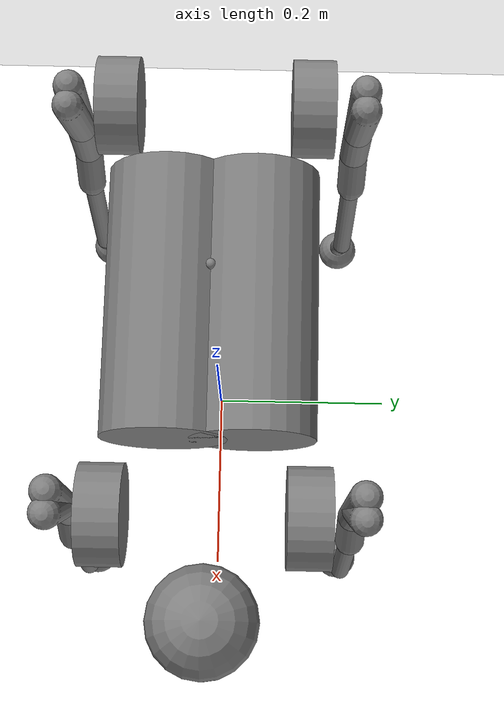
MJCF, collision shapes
<mujoco model="go2 scene">
  <include file="go2_mjx.xml"/>

  <statistic center="0 0 0.1" extent="0.8" meansize="0.04"/>

  <visual>
    <headlight diffuse=".8 .8 .8" ambient=".2 .2 .2" specular="1 1 1"/>
    <rgba force="1 0 0 1"/>
    <global azimuth="120" elevation="-20"/>
    <map force="0.01"/>
    <scale forcewidth="0.3" contactwidth="0.5" contactheight="0.2"/>
    <quality shadowsize="8192"/>
  </visual>

  <asset>
    <texture type="skybox" builtin="gradient" rgb1="1 1 1" rgb2="1 1 1" width="800" height="800"/>
    <texture type="2d" name="groundplane" builtin="checker" mark="edge" rgb1="1 1 1" rgb2="1 1 1" markrgb="0 0 0"
      width="300" height="300"/>
    <material name="groundplane" texture="groundplane" texuniform="true" texrepeat="5 5" reflectance="0"/>
  </asset>

  <worldbody>
    <geom name="floor" size="0 0 0.01" type="plane" material="groundplane" priority="1" friction="0.6" condim="3" contype="1" conaffinity="0"/>
  </worldbody>

  <keyframe>
    <key name="home" qpos="
    0 0 0.278
    1 0 0 0
    0.1 0.9 -1.8
    -0.1 0.9 -1.8
    0.1 0.9 -1.8
    -0.1 0.9 -1.8"
      ctrl="0.1 0.9 -1.8 -0.1 0.9 -1.8 0.1 0.9 -1.8 -0.1 0.9 -1.8"/>
    <key name="higher" qpos="0 0 0.31 1 0 0 0 0 0.82 -1.63 0 0.82 -1.63 0 0.82 -1.63 0 0.82 -1.63"
      ctrl="0 0.82 -1.63 0 0.82 -1.63 0 0.82 -1.63 0 0.82 -1.63"/>
    <key name="pre_recovery"
      qpos="-0.0318481 -0.000215369 0.0579031 1 -2.70738e-05 6.06169e-05 0.000231261 -0.352275 1.18554 -2.80738 0.360892 1.1806 -2.80281 -0.381197 1.16812 -2.79123 0.391054 1.1622 -2.78576"
      ctrl="-0.352275 1.18554 -2.80738 0.360892 1.1806 -2.80281 -0.381197 1.16812 -2.79123 0.391054 1.1622 -2.78576"/>
    <key name="footstand"
      qpos="0 0 0.54 0.8 0 -0.8 0 0 0.82 -1.6 0 0.82 -1.68 0 1.82 -1.16 0.0 1.82 -1.16"
      ctrl="0 0.82 -1.6 0 0.82 -1.68 0 1.82 -1.16 0.0 1.82 -1.16"/>
    <key name="handstand"
      qpos="0 0 0.54 0.8 0 0.8 0 0 -0.686 -1.16 0 -0.686 -1.16 0 1.7 -1.853 0 1.7 -1.853"
      ctrl="0 -0.686 -1.16 0 -0.686 -1.16 0 1.7 -1.853 0 1.7 -1.853"/>
  </keyframe>
</mujoco>

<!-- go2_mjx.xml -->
<mujoco model="go2">
  <compiler angle="radian" meshdir="assets" autolimits="true"/>

  <option iterations="1" ls_iterations="5" timestep="0.004" integrator="Euler">
    <flag eulerdamp="disable"/>
  </option>

  <default>
    <default class="go2">
      <geom friction="0.6" margin="0.001" condim="1"/>
      <joint axis="0 1 0" damping="2" armature="0.01"/>
      <general forcerange="-30 30" biastype="affine" gainprm="50 0 0" biasprm="0 -50 -0.5"/>

      <default class="abduction">
        <joint axis="1 0 0" range="-1.0472 1.0472"/>
        <general ctrlrange="-0.9472 0.9472"/>
      </default>
      <default class="hip">
        <joint range="-1.5708 3.4907"/>
        <general ctrlrange="-1.4 2.5"/>
      </default>
      <default class="knee">
        <joint range="-2.7227 -0.83776"/>
        <general ctrlrange="-2.6227 -0.84776"/>
      </default>
      <default class="visual">
        <geom type="mesh" contype="0" conaffinity="0" group="2"/>
      </default>
      <default class="go2foot">
        <site group="1" pos="-0.002 0 -0.213"/>
        <geom rgba="0.231373 0.380392 0.705882 1"/>
      </default>

      <!-- Revised collision defaults modeled after go1 -->
      <default class="collision">
        <geom group="3" type="capsule"/>
        <default class="hip_left1">
          <geom size="0.046 0.02" pos="0 0.045 0" quat="1 1 0 0" type="cylinder"/>
        </default>
        <default class="hip_left2">
          <geom size="0.031 0.02" pos="0 0.065 0" quat="1 1 0 0" type="cylinder"/>
        </default>
        <default class="hip_left3">
          <geom size="0.046 0.02" quat="1 1 0 0" type="cylinder"/>
        </default>
        <default class="hip_right1">
          <geom size="0.046 0.02" pos="0 -0.045 0" quat="1 1 0 0" type="cylinder"/>
        </default>
        <default class="hip_right2">
          <geom size="0.031 0.02" pos="0 -0.065 0" quat="1 1 0 0" type="cylinder"/>
        </default>
        <default class="hip_right3">
          <geom size="0.046 0.02" quat="1 1 0 0" type="cylinder"/>
        </default>
        <default class="thigh1">
          <geom size="0.015" fromto="-0.02 0 0 -0.02 0 -0.16"/>
        </default>
        <default class="thigh2">
          <geom size="0.015" fromto="0 0 0 -0.02 0 -0.1"/>
        </default>
        <default class="thigh3">
          <geom size="0.015" fromto="-0.02 0 -0.16 0 0 -0.2"/>
        </default>
        <default class="calf1">
          <geom size="0.01" fromto="0 0 0 0.02 0 -0.13"/>
        </default>
        <default class="calf2">
          <geom size="0.01" fromto="0.02 0 -0.13 0 0 -0.2"/>
        </default>
        <default class="foot">
          <geom type="sphere" size="0.023" pos="0 0 -0.213" solimp="0.9 0.95 0.023" condim="3"/>
        </default>
      </default>
    </default>
  </default>

  <asset>
    <material name="metal" rgba=".9 .95 .95 1"/>
    <material name="black" rgba="0 0 0 1"/>
    <material name="white" rgba="1 1 1 1"/>
    <material name="gray" rgba="0.671705 0.692426 0.774270 1"/>

    <mesh file="base_0.obj"/>
    <mesh file="base_1.obj"/>
    <mesh file="base_2.obj"/>
    <mesh file="base_3.obj"/>
    <mesh file="base_4.obj"/>
    <mesh file="hip_0.obj"/>
    <mesh file="hip_1.obj"/>
    <mesh file="thigh_0.obj"/>
    <mesh file="thigh_1.obj"/>
    <mesh file="thigh_mirror_0.obj"/>
    <mesh file="thigh_mirror_1.obj"/>
    <mesh file="calf_0.obj"/>
    <mesh file="calf_1.obj"/>
    <mesh file="calf_mirror_0.obj"/>
    <mesh file="calf_mirror_1.obj"/>
    <mesh file="foot.obj"/>
  </asset>

  <worldbody>
    <body name="base" pos="0 0 0.445" childclass="go2">
      <camera name="track" pos="0.846 -1.465 0.916" xyaxes="0.866 0.500 0.000 -0.171 0.296 0.940" mode="trackcom"/>
      <inertial pos="0.021112 0 -0.005366" quat="-0.000543471 0.713435 -0.00173769 0.700719" mass="6.921"
        diaginertia="0.107027 0.0980771 0.0244531"/>
      <freejoint/>
      <!-- Revised base collision geoms: two cylindrical approximations -->
      <geom class="collision" type="cylinder" quat="1 0 1 0" pos="0 -0.04 0" size="0.058 0.125"/>
      <geom class="collision" type="cylinder" quat="1 0 1 0" pos="0 0.04 0" size="0.058 0.125"/>

      <!-- Head and Lidar Collision Spheres -->
      <site name="head" pos="0.285 0 0.01" rgba="1 0 0 1" size="0.02" group="5"/>
      <geom name="head_collision" type="sphere" size="0.05 0.045" pos="0.285 0 0.01" class="collision"/>
      <geom name="lidar_collision" type="sphere" size="0.043" pos="0.293 0 -0.06" class="collision"/>

      <!-- Base visual meshes remain unchanged -->
      <geom mesh="base_0" material="black" class="visual"/>
      <geom mesh="base_1" material="black" class="visual"/>
      <geom mesh="base_2" material="black" class="visual"/>
      <geom mesh="base_3" material="white" class="visual"/>
      <geom mesh="base_4" material="gray" class="visual"/>
      <site name="imu" pos="-0.02557 0 0.04232"/>

      <!-- Left Front Leg -->
      <body name="FL_hip" pos="0.1934 0.0465 0">
        <inertial pos="-0.0054 0.00194 -0.000105" quat="0.497014 0.499245 0.505462 0.498237" mass="0.678"
          diaginertia="0.00088403 0.000596003 0.000479967"/>
        <joint name="FL_hip_joint" class="abduction"/>
        <geom mesh="hip_0" material="metal" class="visual"/>
        <geom mesh="hip_1" material="gray" class="visual"/>
        <!-- Use collision defaults for left hip -->
        <geom name="fl_hip" class="hip_left1"/>
        <body name="FL_thigh" pos="0 0.0955 0">
          <inertial pos="-0.00374 -0.0223 -0.0327" quat="0.829533 0.0847635 -0.0200632 0.551623" mass="1.152"
            diaginertia="0.00594973 0.00584149 0.000878787"/>
          <joint name="FL_thigh_joint" class="hip"/>
          <geom mesh="thigh_0" material="metal" class="visual"/>
          <geom mesh="thigh_1" material="gray" class="visual"/>
          <!-- Use three collision geoms for thigh -->
          <geom name="fl_thigh1" class="thigh1"/>
          <geom name="fl_thigh2" class="thigh2"/>
          <geom name="fl_thigh3" class="thigh3"/>
          <body name="FL_calf" pos="0 0 -0.213">
            <inertial pos="0.00629595 -0.000622121 -0.141417" quat="0.710672 0.00154099 -0.00450087 0.703508"
              mass="0.241352" diaginertia="0.0014901 0.00146356 5.31397e-05"/>
            <joint name="FL_calf_joint" class="knee"/>
            <geom mesh="calf_0" material="gray" class="visual"/>
            <geom mesh="calf_1" material="black" class="visual"/>
            <!-- Two collision geoms for calf -->
            <geom name="fl_calf1" class="calf1"/>
            <geom name="fl_calf2" class="calf2"/>
            <!-- Foot: using the revised foot collision -->
            <geom pos="0 0 -0.213" mesh="foot" class="visual" material="black"/>
            <geom name="FL" class="foot"/>
            <site name="FL_foot" class="go2foot"/>
          </body>
        </body>
      </body>

      <!-- Right Front Leg -->
      <body name="FR_hip" pos="0.1934 -0.0465 0">
        <inertial pos="-0.0054 -0.00194 -0.000105" quat="0.498237 0.505462 0.499245 0.497014" mass="0.678"
          diaginertia="0.00088403 0.000596003 0.000479967"/>
        <joint name="FR_hip_joint" class="abduction"/>
        <geom mesh="hip_0" material="metal" class="visual" quat="4.63268e-05 1 0 0"/>
        <geom mesh="hip_1" material="gray" class="visual" quat="4.63268e-05 1 0 0"/>
        <!-- Use collision default for right hip -->
        <geom name="fr_hip" class="hip_right1"/>
        <body name="FR_thigh" pos="0 -0.0955 0">
          <inertial pos="-0.00374 0.0223 -0.0327" quat="0.551623 -0.0200632 0.0847635 0.829533" mass="1.152"
            diaginertia="0.00594973 0.00584149 0.000878787"/>
          <joint name="FR_thigh_joint" class="hip"/>
          <geom mesh="thigh_mirror_0" material="metal" class="visual"/>
          <geom mesh="thigh_mirror_1" material="gray" class="visual"/>
          <!-- Three collision geoms for thigh -->
          <geom name="fr_thigh1" class="thigh1"/>
          <geom name="fr_thigh2" class="thigh2"/>
          <geom name="fr_thigh3" class="thigh3"/>
          <body name="FR_calf" pos="0 0 -0.213">
            <inertial pos="0.00629595 0.000622121 -0.141417" quat="0.703508 -0.00450087 0.00154099 0.710672"
              mass="0.241352" diaginertia="0.0014901 0.00146356 5.31397e-05"/>
            <joint name="FR_calf_joint" class="knee"/>
            <geom mesh="calf_mirror_0" material="gray" class="visual"/>
            <geom mesh="calf_mirror_1" material="black" class="visual"/>
            <!-- Two collision geoms for calf -->
            <geom name="fr_calf1" class="calf1"/>
            <geom name="fr_calf2" class="calf2"/>
            <!-- Foot collision -->
            <geom pos="0 0 -0.213" mesh="foot" class="visual" material="black"/>
            <geom name="FR" class="foot"/>
            <site name="FR_foot" class="go2foot"/>
          </body>
        </body>
      </body>

      <!-- Left Rear Leg -->
      <body name="RL_hip" pos="-0.1934 0.0465 0">
        <inertial pos="0.0054 0.00194 -0.000105" quat="0.505462 0.498237 0.497014 0.499245" mass="0.678"
          diaginertia="0.00088403 0.000596003 0.000479967"/>
        <joint name="RL_hip_joint" class="abduction"/>
        <geom mesh="hip_0" material="metal" class="visual" quat="4.63268e-05 0 1 0"/>
        <geom mesh="hip_1" material="gray" class="visual" quat="4.63268e-05 0 1 0"/>
        <!-- Use collision default for left hip (rear) -->
        <geom name="rl_hip" class="hip_left1"/>
        <body name="RL_thigh" pos="0 0.0955 0">
          <inertial pos="-0.00374 -0.0223 -0.0327" quat="0.829533 0.0847635 -0.0200632 0.551623" mass="1.152"
            diaginertia="0.00594973 0.00584149 0.000878787"/>
          <joint name="RL_thigh_joint" class="hip"/>
          <geom mesh="thigh_0" material="metal" class="visual"/>
          <geom mesh="thigh_1" material="gray" class="visual"/>
          <!-- Three collision geoms for thigh -->
          <geom name="rl_thigh1" class="thigh1"/>
          <geom name="rl_thigh2" class="thigh2"/>
          <geom name="rl_thigh3" class="thigh3"/>
          <body name="RL_calf" pos="0 0 -0.213">
            <inertial pos="0.00629595 -0.000622121 -0.141417" quat="0.710672 0.00154099 -0.00450087 0.703508"
              mass="0.241352" diaginertia="0.0014901 0.00146356 5.31397e-05"/>
            <joint name="RL_calf_joint" class="knee"/>
            <geom mesh="calf_0" material="gray" class="visual"/>
            <geom mesh="calf_1" material="black" class="visual"/>
            <!-- Two collision geoms for calf -->
            <geom name="rl_calf1" class="calf1"/>
            <geom name="rl_calf2" class="calf2"/>
            <!-- Foot collision -->
            <geom pos="0 0 -0.213" mesh="foot" class="visual" material="black"/>
            <geom name="RL" class="foot"/>
            <site name="RL_foot" class="go2foot"/>
          </body>
        </body>
      </body>

      <!-- Right Rear Leg -->
      <body name="RR_hip" pos="-0.1934 -0.0465 0">
        <inertial pos="0.0054 -0.00194 -0.000105" quat="0.499245 0.497014 0.498237 0.505462" mass="0.678"
          diaginertia="0.00088403 0.000596003 0.000479967"/>
        <joint name="RR_hip_joint" class="abduction"/>
        <geom mesh="hip_0" material="metal" class="visual" quat="2.14617e-09 4.63268e-05 4.63268e-05 -1"/>
        <geom mesh="hip_1" material="gray" class="visual" quat="2.14617e-09 4.63268e-05 4.63268e-05 -1"/>
        <!-- Use collision default for right hip (rear) -->
        <geom name="rr_hip" class="hip_right1"/>
        <body name="RR_thigh" pos="0 -0.0955 0">
          <inertial pos="-0.00374 0.0223 -0.0327" quat="0.551623 -0.0200632 0.0847635 0.829533" mass="1.152"
            diaginertia="0.00594973 0.00584149 0.000878787"/>
          <joint name="RR_thigh_joint" class="hip"/>
          <geom mesh="thigh_mirror_0" material="metal" class="visual"/>
          <geom mesh="thigh_mirror_1" material="gray" class="visual"/>
          <!-- Three collision geoms for thigh -->
          <geom name="rr_thigh1" class="thigh1"/>
          <geom name="rr_thigh2" class="thigh2"/>
          <geom name="rr_thigh3" class="thigh3"/>
          <body name="RR_calf" pos="0 0 -0.213">
            <inertial pos="0.00629595 0.000622121 -0.141417" quat="0.703508 -0.00450087 0.00154099 0.710672"
              mass="0.241352" diaginertia="0.0014901 0.00146356 5.31397e-05"/>
            <joint name="RR_calf_joint" class="knee"/>
            <geom mesh="calf_mirror_0" material="gray" class="visual"/>
            <geom mesh="calf_mirror_1" material="black" class="visual"/>
            <!-- Two collision geoms for calf -->
            <geom name="rr_calf1" class="calf1"/>
            <geom name="rr_calf2" class="calf2"/>
            <!-- Foot collision -->
            <geom pos="0 0 -0.213" mesh="foot" class="visual" material="black"/>
            <geom name="RR" class="foot"/>
            <site name="RR_foot" class="go2foot"/>
          </body>
        </body>
      </body>
    </body>
  </worldbody>

  <actuator>
    <general class="abduction" name="FR_hip" joint="FR_hip_joint"/>
    <general class="hip" name="FR_thigh" joint="FR_thigh_joint"/>
    <general class="knee" name="FR_calf" joint="FR_calf_joint"/>
    <general class="abduction" name="FL_hip" joint="FL_hip_joint"/>
    <general class="hip" name="FL_thigh" joint="FL_thigh_joint"/>
    <general class="knee" name="FL_calf" joint="FL_calf_joint"/>
    <general class="abduction" name="RR_hip" joint="RR_hip_joint"/>
    <general class="hip" name="RR_thigh" joint="RR_thigh_joint"/>
    <general class="knee" name="RR_calf" joint="RR_calf_joint"/>
    <general class="abduction" name="RL_hip" joint="RL_hip_joint"/>
    <general class="hip" name="RL_thigh" joint="RL_thigh_joint"/>
    <general class="knee" name="RL_calf" joint="RL_calf_joint"/>
  </actuator>

  <sensor>
    <jointpos joint="FL_hip_joint" name="abduction_front_left_pos"/>
    <jointpos joint="FL_thigh_joint" name="hip_front_left_pos"/>
    <jointpos joint="FL_calf_joint" name="knee_front_left_pos"/>
    <jointpos joint="RL_hip_joint" name="abduction_hind_left_pos"/>
    <jointpos joint="RL_thigh_joint" name="hip_hind_left_pos"/>
    <jointpos joint="RL_calf_joint" name="knee_hind_left_pos"/>
    <jointpos joint="FR_hip_joint" name="abduction_front_right_pos"/>
    <jointpos joint="FR_thigh_joint" name="hip_front_right_pos"/>
    <jointpos joint="FR_calf_joint" name="knee_front_right_pos"/>
    <jointpos joint="RR_hip_joint" name="abduction_hind_right_pos"/>
    <jointpos joint="RR_thigh_joint" name="hip_hind_right_pos"/>
    <jointpos joint="RR_calf_joint" name="knee_hind_right_pos"/>
    <jointvel joint="FL_hip_joint" name="abduction_front_left_vel"/>
    <jointvel joint="FL_thigh_joint" name="hip_front_left_vel"/>
    <jointvel joint="FL_calf_joint" name="knee_front_left_vel"/>
    <jointvel joint="RL_hip_joint" name="abduction_hind_left_vel"/>
    <jointvel joint="RL_thigh_joint" name="hip_hind_left_vel"/>
    <jointvel joint="RL_calf_joint" name="knee_hind_left_vel"/>
    <jointvel joint="FR_hip_joint" name="abduction_front_right_vel"/>
    <jointvel joint="FR_thigh_joint" name="hip_front_right_vel"/>
    <jointvel joint="FR_calf_joint" name="knee_front_right_vel"/>
    <jointvel joint="RR_hip_joint" name="abduction_hind_right_vel"/>
    <jointvel joint="RR_thigh_joint" name="hip_hind_right_vel"/>
    <jointvel joint="RR_calf_joint" name="knee_hind_right_vel"/>
    <gyro site="imu" name="gyro"/>
    <accelerometer site="imu" name="accelerometer"/>
    <framezaxis objtype="site" objname="imu" name="upvector"/>
    <framexaxis objtype="site" objname="imu" name="forwardvector"/>
    <framepos objtype="site" objname="imu" name="position"/>
    <framequat objtype="site" objname="imu" name="orientation"/>
    <framepos objtype="site" objname="imu" name="global_position"/>
    <framelinvel objtype="site" objname="imu" name="global_linvel"/>
    <frameangvel objtype="site" objname="imu" name="global_angvel"/>
    <velocimeter site="imu" name="local_linvel"/>
    <framelinvel objtype="site" objname="FR_foot" name="FR_foot_global_linvel"/>
    <framelinvel objtype="site" objname="FL_foot" name="FL_foot_global_linvel"/>
    <framelinvel objtype="site" objname="RR_foot" name="RR_foot_global_linvel"/>
    <framelinvel objtype="site" objname="RL_foot" name="RL_foot_global_linvel"/>
    <framepos objtype="site" objname="FR_foot" name="FR_foot_pos" reftype="site" refname="imu"/>
    <framepos objtype="site" objname="FL_foot" name="FL_foot_pos" reftype="site" refname="imu"/>
    <framepos objtype="site" objname="RR_foot" name="RR_foot_pos" reftype="site" refname="imu"/>
    <framepos objtype="site" objname="RL_foot" name="RL_foot_pos" reftype="site" refname="imu"/>
    <framepos objtype="site" objname="head" name="head_pos"/>
  </sensor>

</mujoco>
